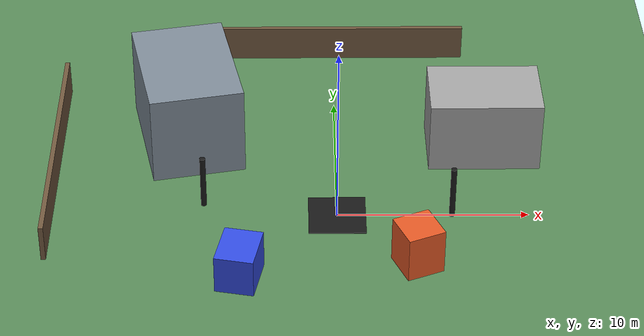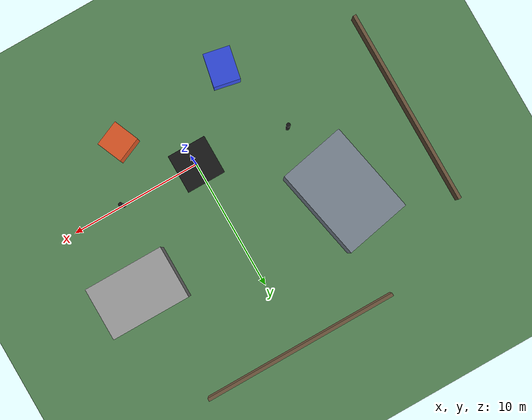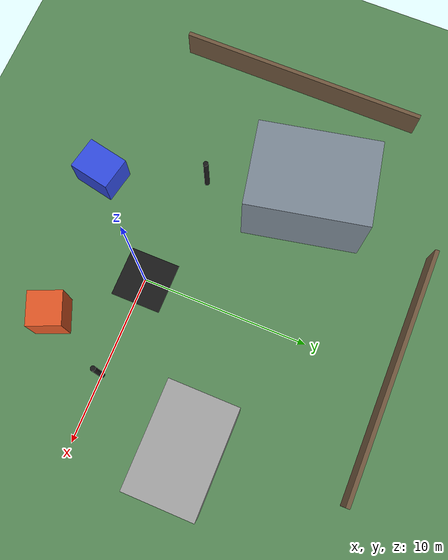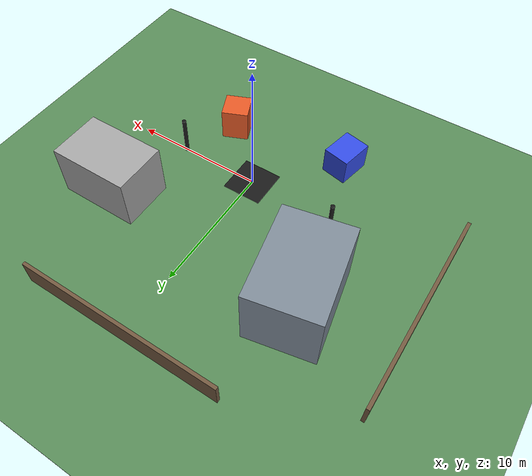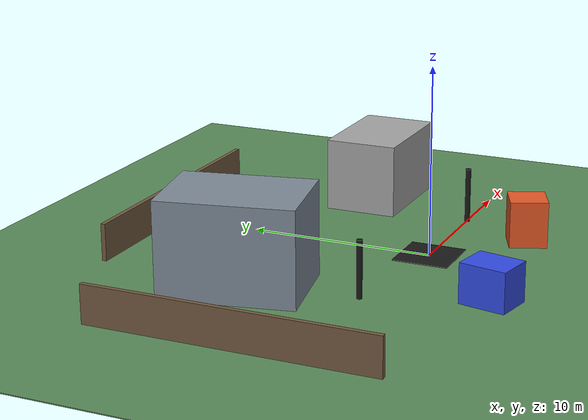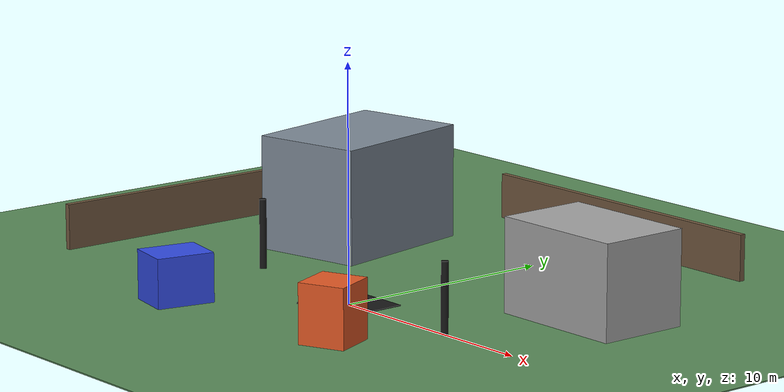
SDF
<?xml version="1.0" ?>
<sdf version="1.9">
  <world name="outdoor_slam_test">

    <spherical_coordinates>
      <surface_model>EARTH_WGS84</surface_model>
      <latitude_deg>47.397742</latitude_deg>
      <longitude_deg>8.545594</longitude_deg>
      <elevation>488.0</elevation>
      <heading_deg>0</heading_deg>
    </spherical_coordinates>

    <magnetic_field>6.0e-6 2.3e-5 -4.2e-5</magnetic_field>

    <physics name="default_physics" type="ode">
      <max_step_size>0.004</max_step_size>
      <real_time_factor>1.0</real_time_factor>
      <real_time_update_rate>250</real_time_update_rate>
    </physics>

    <plugin filename="gz-sim-physics-system" name="gz::sim::systems::Physics"/>
    <plugin filename="gz-sim-user-commands-system" name="gz::sim::systems::UserCommands"/>
    <plugin filename="gz-sim-scene-broadcaster-system" name="gz::sim::systems::SceneBroadcaster"/>
    <plugin filename="gz-sim-imu-system" name="gz::sim::systems::Imu"/>
    <plugin filename="gz-sim-air-pressure-system" name="gz::sim::systems::AirPressure"/>
    <plugin filename="gz-sim-magnetometer-system" name="gz::sim::systems::Magnetometer"/>
    <plugin filename="gz-sim-navsat-system" name="gz::sim::systems::NavSat"/>
    <plugin filename="gz-sim-sensors-system" name="gz::sim::systems::Sensors">
      <render_engine>ogre2</render_engine>
    </plugin>

    <scene>
      <ambient>0.7 0.7 0.7 1</ambient>
      <background>0.55 0.75 0.95 1</background>
      <shadows>true</shadows>
    </scene>

    <light type="directional" name="sun">
      <cast_shadows>true</cast_shadows>
      <pose>0 0 30 0 0 0</pose>
      <diffuse>1 1 1 1</diffuse>
      <specular>0.2 0.2 0.2 1</specular>
      <attenuation>
        <range>1000</range>
        <constant>0.9</constant>
        <linear>0.01</linear>
        <quadratic>0.001</quadratic>
      </attenuation>
      <direction>-0.4 0.2 -0.9</direction>
    </light>

    <!-- Ground -->
    <model name="ground_plane">
      <static>true</static>
      <pose>0 0 -0.025 0 0 0</pose>
      <link name="link">
        <collision name="collision">
          <geometry>
            <box>
              <size>80 80 0.05</size>
            </box>
          </geometry>
        </collision>
        <visual name="visual">
          <geometry>
            <box>
              <size>80 80 0.05</size>
            </box>
          </geometry>
          <material>
            <ambient>0.35 0.55 0.35 1</ambient>
            <diffuse>0.35 0.55 0.35 1</diffuse>
          </material>
        </visual>
      </link>
    </model>

    <!-- Takeoff pad -->
    <model name="takeoff_pad">
      <static>true</static>
      <pose>0 0 0.02 0 0 0</pose>
      <link name="link">
        <collision name="collision">
          <geometry>
            <box>
              <size>3 3 0.04</size>
            </box>
          </geometry>
        </collision>
        <visual name="visual">
          <geometry>
            <box>
              <size>3 3 0.04</size>
            </box>
          </geometry>
          <material>
            <ambient>0.1 0.1 0.1 1</ambient>
            <diffuse>0.1 0.1 0.1 1</diffuse>
          </material>
        </visual>
      </link>
    </model>

    <!-- Building 1 -->
    <model name="building_1">
      <static>true</static>
      <pose>8 6 2 0 0 0</pose>
      <link name="link">
        <collision name="collision">
          <geometry>
            <box>
              <size>6 4 4</size>
            </box>
          </geometry>
        </collision>
        <visual name="visual">
          <geometry>
            <box>
              <size>6 4 4</size>
            </box>
          </geometry>
          <material>
            <ambient>0.65 0.65 0.65 1</ambient>
            <diffuse>0.65 0.65 0.65 1</diffuse>
          </material>
        </visual>
      </link>
    </model>

    <!-- Building 2 -->
    <model name="building_2">
      <static>true</static>
      <pose>-8 7 2.5 0 0 0.2</pose>
      <link name="link">
        <collision name="collision">
          <geometry>
            <box>
              <size>5 7 5</size>
            </box>
          </geometry>
        </collision>
        <visual name="visual">
          <geometry>
            <box>
              <size>5 7 5</size>
            </box>
          </geometry>
          <material>
            <ambient>0.5 0.55 0.6 1</ambient>
            <diffuse>0.5 0.55 0.6 1</diffuse>
          </material>
        </visual>
      </link>
    </model>

    <!-- Fence north -->
    <model name="fence_north">
      <static>true</static>
      <pose>0 15 1 0 0 0</pose>
      <link name="link">
        <collision name="collision">
          <geometry>
            <box>
              <size>15 0.25 2</size>
            </box>
          </geometry>
        </collision>
        <visual name="visual">
          <geometry>
            <box>
              <size>15 0.25 2</size>
            </box>
          </geometry>
          <material>
            <ambient>0.45 0.35 0.25 1</ambient>
            <diffuse>0.45 0.35 0.25 1</diffuse>
          </material>
        </visual>
      </link>
    </model>

    <!-- Fence west -->
    <model name="fence_west">
      <static>true</static>
      <pose>-15 4 1 0 0 0</pose>
      <link name="link">
        <collision name="collision">
          <geometry>
            <box>
              <size>0.25 15 2</size>
            </box>
          </geometry>
        </collision>
        <visual name="visual">
          <geometry>
            <box>
              <size>0.25 15 2</size>
            </box>
          </geometry>
          <material>
            <ambient>0.45 0.35 0.25 1</ambient>
            <diffuse>0.45 0.35 0.25 1</diffuse>
          </material>
        </visual>
      </link>
    </model>

    <!-- Cargo boxes -->
    <model name="cargo_box_1">
      <static>true</static>
      <pose>4 -4 0.75 0 0 0.4</pose>
      <link name="link">
        <collision name="collision">
          <geometry>
            <box>
              <size>2 2 3.5</size>
            </box>
          </geometry>
        </collision>
        <visual name="visual">
          <geometry>
            <box>
              <size>2 2 3.5</size>
            </box>
          </geometry>
          <material>
            <ambient>0.9 0.35 0.15 1</ambient>
            <diffuse>0.9 0.35 0.15 1</diffuse>
          </material>
        </visual>
      </link>
    </model>

    <model name="cargo_box_2">
      <static>true</static>
      <pose>-5 -5 0.6 0 0 -0.2</pose>
      <link name="link">
        <collision name="collision">
          <geometry>
            <box>
              <size>2 2.5 3</size>
            </box>
          </geometry>
        </collision>
        <visual name="visual">
          <geometry>
            <box>
              <size>2 2.5 3</size>
            </box>
          </geometry>
          <material>
            <ambient>0.2 0.3 0.9 1</ambient>
            <diffuse>0.2 0.3 0.9 1</diffuse>
          </material>
        </visual>
      </link>
    </model>

    <!-- Poles -->
    <model name="pole_1">
      <static>true</static>
      <pose>6 0 1.5 0 0 0</pose>
      <link name="link">
        <collision name="collision">
          <geometry>
            <cylinder>
              <radius>0.15</radius>
              <length>3</length>
            </cylinder>
          </geometry>
        </collision>
        <visual name="visual">
          <geometry>
            <cylinder>
              <radius>0.15</radius>
              <length>3</length>
            </cylinder>
          </geometry>
          <material>
            <ambient>0.1 0.1 0.1 1</ambient>
            <diffuse>0.1 0.1 0.1 1</diffuse>
          </material>
        </visual>
      </link>
    </model>

    <model name="pole_2">
      <static>true</static>
      <pose>-7 1 1.5 0 0 0</pose>
      <link name="link">
        <collision name="collision">
          <geometry>
            <cylinder>
              <radius>0.15</radius>
              <length>3</length>
            </cylinder>
          </geometry>
        </collision>
        <visual name="visual">
          <geometry>
            <cylinder>
              <radius>0.15</radius>
              <length>3</length>
            </cylinder>
          </geometry>
          <material>
            <ambient>0.1 0.1 0.1 1</ambient>
            <diffuse>0.1 0.1 0.1 1</diffuse>
          </material>
        </visual>
      </link>
    </model>

  </world>
</sdf>
